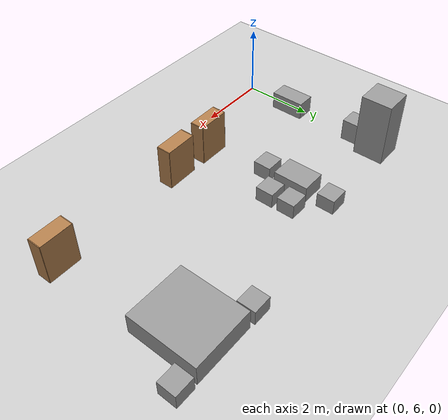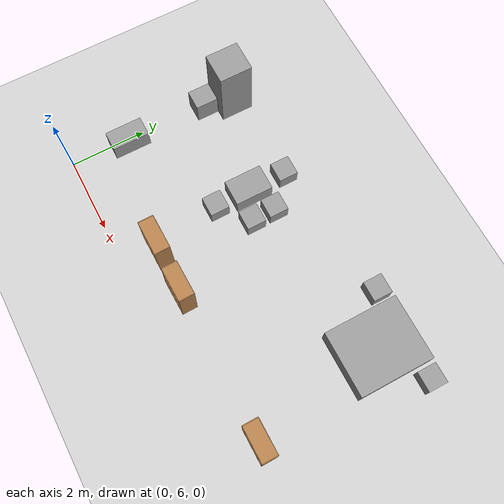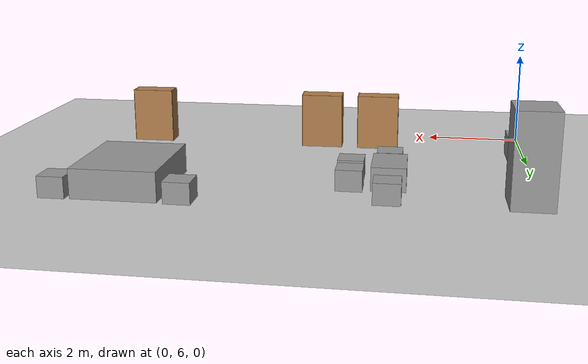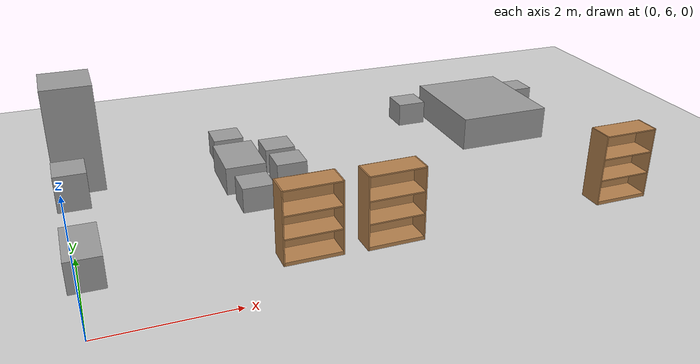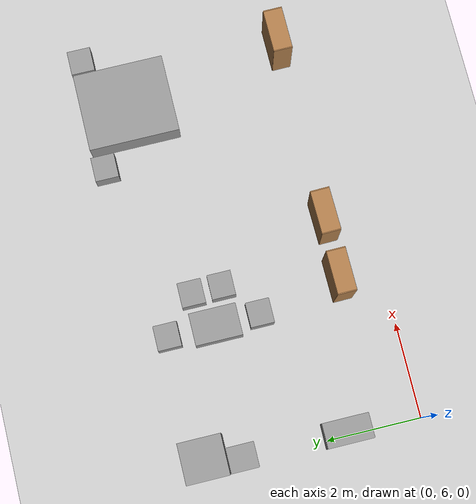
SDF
<sdf version="1.7">
 <world name="default">
  <model name="ground_plane">
   <static>1</static>
   <link name="link">
    <collision name="collision">
     <geometry><plane><normal>0 0 1</normal><size>100 100</size></plane></geometry>
     <surface>
      <contact><collide_bitmask>65535</collide_bitmask></contact>
      <friction><ode><mu>100</mu><mu2>50</mu2></ode></friction>
     </surface>
    </collision>
    <visual name="visual">
     <cast_shadows>0</cast_shadows>
     <geometry><plane><normal>0 0 1</normal><size>100 100</size></plane></geometry>
     <material>
      <script><uri>file://media/materials/scripts/gazebo.material</uri><name>Gazebo/Grey</name></script>
     </material>
    </visual>
   </link>
  </model>
  <model name="bookshelf_clone">
   <static>1</static>
   <link name="link">
    <inertial><mass>1</mass></inertial>
    <collision name="back">
     <pose>0 0.005 0.6 0 -0 0</pose>
     <geometry><box><size>0.9 0.01 1.2</size></box></geometry>
    </collision>
    <visual name="visual1">
     <pose>0 0.005 0.6 0 -0 0</pose>
     <geometry><box><size>0.9 0.01 1.2</size></box></geometry>
     <material>
      <script><uri>file://media/materials/scripts/gazebo.material</uri><name>Gazebo/Wood</name></script>
     </material>
    </visual>
    <collision name="left_side">
     <pose>0.45 -0.195 0.6 0 -0 0</pose>
     <geometry><box><size>0.02 0.4 1.2</size></box></geometry>
    </collision>
    <visual name="visual2">
     <pose>0.45 -0.195 0.6 0 -0 0</pose>
     <geometry><box><size>0.02 0.4 1.2</size></box></geometry>
     <material>
      <script><uri>file://media/materials/scripts/gazebo.material</uri><name>Gazebo/Wood</name></script>
     </material>
    </visual>
    <collision name="right_side">
     <pose>-0.45 -0.195 0.6 0 -0 0</pose>
     <geometry><box><size>0.02 0.4 1.2</size></box></geometry>
    </collision>
    <visual name="visual3">
     <pose>-0.45 -0.195 0.6 0 -0 0</pose>
     <geometry><box><size>0.02 0.4 1.2</size></box></geometry>
     <material>
      <script><uri>file://media/materials/scripts/gazebo.material</uri><name>Gazebo/Wood</name></script>
     </material>
    </visual>
    <collision name="bottom">
     <pose>0 -0.195 0.03 0 -0 0</pose>
     <geometry><box><size>0.88 0.4 0.06</size></box></geometry>
    </collision>
    <visual name="visual4">
     <pose>0 -0.195 0.03 0 -0 0</pose>
     <geometry><box><size>0.88 0.4 0.06</size></box></geometry>
     <material>
      <script><uri>file://media/materials/scripts/gazebo.material</uri><name>Gazebo/Wood</name></script>
     </material>
    </visual>
    <collision name="top">
     <pose>0 -0.195 1.19 0 -0 0</pose>
     <geometry><box><size>0.88 0.4 0.02</size></box></geometry>
    </collision>
    <visual name="visual5">
     <pose>0 -0.195 1.19 0 -0 0</pose>
     <geometry><box><size>0.88 0.4 0.02</size></box></geometry>
     <material>
      <script><uri>file://media/materials/scripts/gazebo.material</uri><name>Gazebo/Wood</name></script>
     </material>
    </visual>
    <collision name="low_shelf">
     <pose>0 -0.195 0.43 0 -0 0</pose>
     <geometry><box><size>0.88 0.4 0.02</size></box></geometry>
    </collision>
    <visual name="visual6">
     <pose>0 -0.195 0.43 0 -0 0</pose>
     <geometry><box><size>0.88 0.4 0.02</size></box></geometry>
     <material>
      <script><uri>file://media/materials/scripts/gazebo.material</uri><name>Gazebo/Wood</name></script>
     </material>
    </visual>
    <collision name="high_shelf">
     <pose>0 -0.195 0.8 0 -0 0</pose>
     <geometry><box><size>0.88 0.4 0.02</size></box></geometry>
    </collision>
    <visual name="visual7">
     <pose>0 -0.195 0.8 0 -0 0</pose>
     <geometry><box><size>0.88 0.4 0.02</size></box></geometry>
     <material>
      <script><uri>file://media/materials/scripts/gazebo.material</uri><name>Gazebo/Wood</name></script>
     </material>
    </visual>
   </link>
   <pose>3.20421 7.1574 0 0 -0 0.011143</pose>
  </model>
  <model name="bookshelf_clone_0">
   <static>1</static>
   <link name="link">
    <inertial><mass>1</mass></inertial>
    <collision name="back">
     <pose>0 0.005 0.6 0 -0 0</pose>
     <geometry><box><size>0.9 0.01 1.2</size></box></geometry>
    </collision>
    <visual name="visual1">
     <pose>0 0.005 0.6 0 -0 0</pose>
     <geometry><box><size>0.9 0.01 1.2</size></box></geometry>
     <material>
      <script><uri>file://media/materials/scripts/gazebo.material</uri><name>Gazebo/Wood</name></script>
     </material>
    </visual>
    <collision name="left_side">
     <pose>0.45 -0.195 0.6 0 -0 0</pose>
     <geometry><box><size>0.02 0.4 1.2</size></box></geometry>
    </collision>
    <visual name="visual2">
     <pose>0.45 -0.195 0.6 0 -0 0</pose>
     <geometry><box><size>0.02 0.4 1.2</size></box></geometry>
     <material>
      <script><uri>file://media/materials/scripts/gazebo.material</uri><name>Gazebo/Wood</name></script>
     </material>
    </visual>
    <collision name="right_side">
     <pose>-0.45 -0.195 0.6 0 -0 0</pose>
     <geometry><box><size>0.02 0.4 1.2</size></box></geometry>
    </collision>
    <visual name="visual3">
     <pose>-0.45 -0.195 0.6 0 -0 0</pose>
     <geometry><box><size>0.02 0.4 1.2</size></box></geometry>
     <material>
      <script><uri>file://media/materials/scripts/gazebo.material</uri><name>Gazebo/Wood</name></script>
     </material>
    </visual>
    <collision name="bottom">
     <pose>0 -0.195 0.03 0 -0 0</pose>
     <geometry><box><size>0.88 0.4 0.06</size></box></geometry>
    </collision>
    <visual name="visual4">
     <pose>0 -0.195 0.03 0 -0 0</pose>
     <geometry><box><size>0.88 0.4 0.06</size></box></geometry>
     <material>
      <script><uri>file://media/materials/scripts/gazebo.material</uri><name>Gazebo/Wood</name></script>
     </material>
    </visual>
    <collision name="top">
     <pose>0 -0.195 1.19 0 -0 0</pose>
     <geometry><box><size>0.88 0.4 0.02</size></box></geometry>
    </collision>
    <visual name="visual5">
     <pose>0 -0.195 1.19 0 -0 0</pose>
     <geometry><box><size>0.88 0.4 0.02</size></box></geometry>
     <material>
      <script><uri>file://media/materials/scripts/gazebo.material</uri><name>Gazebo/Wood</name></script>
     </material>
    </visual>
    <collision name="low_shelf">
     <pose>0 -0.195 0.43 0 -0 0</pose>
     <geometry><box><size>0.88 0.4 0.02</size></box></geometry>
    </collision>
    <visual name="visual6">
     <pose>0 -0.195 0.43 0 -0 0</pose>
     <geometry><box><size>0.88 0.4 0.02</size></box></geometry>
     <material>
      <script><uri>file://media/materials/scripts/gazebo.material</uri><name>Gazebo/Wood</name></script>
     </material>
    </visual>
    <collision name="high_shelf">
     <pose>0 -0.195 0.8 0 -0 0</pose>
     <geometry><box><size>0.88 0.4 0.02</size></box></geometry>
    </collision>
    <visual name="visual7">
     <pose>0 -0.195 0.8 0 -0 0</pose>
     <geometry><box><size>0.88 0.4 0.02</size></box></geometry>
     <material>
      <script><uri>file://media/materials/scripts/gazebo.material</uri><name>Gazebo/Wood</name></script>
     </material>
    </visual>
   </link>
   <pose>4.47359 7.13831 -0.006508 -0.017087 0.000419 0.020797</pose>
  </model>
  <model name="unit_box">
   <link name="link">
    <inertial>
     <mass>1</mass>
     <inertia>
      <ixx>0.166667</ixx>
      <ixy>0</ixy>
      <ixz>0</ixz>
      <iyy>0.166667</iyy>
      <iyz>0</iyz>
      <izz>0.166667</izz>
     </inertia>
    </inertial>
    <visual name="visual">
     <geometry><box><size>1.68417 1.93569 0.590711</size></box></geometry>
     <material>
      <script><name>Gazebo/Grey</name><uri>file://media/materials/scripts/gazebo.material</uri></script>
      <shader type="pixel"><normal_map>__default__</normal_map></shader>
      <ambient>0.933 0.933 0.925 1</ambient>
      <diffuse>0.7 0.7 0.7 1</diffuse>
      <specular>0.01 0.01 0.01 1</specular>
      <emissive>0 0 0 1</emissive>
     </material>
    </visual>
    <collision name="collision">
     <geometry><box><size>1.68417 1.93569 0.590711</size></box></geometry>
     <surface>
      <friction>
       <ode><mu>1</mu><mu2>1</mu2><fdir1>0 0 0</fdir1><slip1>0</slip1><slip2>0</slip2></ode>
       <torsional>
        <coefficient>1</coefficient>
        <patch_radius>0</patch_radius>
        <surface_radius>0</surface_radius>
        <use_patch_radius>1</use_patch_radius>
        <ode><slip>0</slip></ode>
       </torsional>
      </friction>
      <bounce><restitution_coefficient>0</restitution_coefficient><threshold>1e+06</threshold></bounce>
      <contact>
       <collide_without_contact>0</collide_without_contact>
       <collide_without_contact_bitmask>1</collide_without_contact_bitmask>
       <collide_bitmask>1</collide_bitmask>
       <ode>
        <soft_cfm>0</soft_cfm>
        <soft_erp>0.2</soft_erp>
        <kp>1e+13</kp>
        <kd>1</kd>
        <max_vel>0.01</max_vel>
        <min_depth>0</min_depth>
       </ode>
       <bullet>
        <split_impulse>1</split_impulse>
        <split_impulse_penetration_threshold>-0.01</split_impulse_penetration_threshold>
        <soft_cfm>0</soft_cfm>
        <soft_erp>0.2</soft_erp>
        <kp>1e+13</kp>
        <kd>1</kd>
       </bullet>
      </contact>
     </surface>
    </collision>
   </link>
   <static>0</static>
   <pose>7.86164 10.4166 0.295328 2.8e-05 -0 0.001435</pose>
  </model>
  <model name="unit_box_clone">
   <link name="link">
    <inertial>
     <mass>1</mass>
     <inertia>
      <ixx>0.166667</ixx>
      <ixy>0</ixy>
      <ixz>0</ixz>
      <iyy>0.166667</iyy>
      <iyz>0</iyz>
      <izz>0.166667</izz>
     </inertia>
    </inertial>
    <visual name="visual">
     <geometry><box><size>0.525272 0.502179 0.423961</size></box></geometry>
     <material>
      <script><name>Gazebo/Grey</name><uri>file://media/materials/scripts/gazebo.material</uri></script>
      <shader type="pixel"><normal_map>__default__</normal_map></shader>
      <ambient>0.933 0.933 0.925 1</ambient>
      <diffuse>0.7 0.7 0.7 1</diffuse>
      <specular>0.01 0.01 0.01 1</specular>
      <emissive>0 0 0 1</emissive>
     </material>
    </visual>
    <collision name="collision">
     <geometry><box><size>0.525272 0.502179 0.423961</size></box></geometry>
     <surface>
      <friction>
       <ode><mu>1</mu><mu2>1</mu2><fdir1>0 0 0</fdir1><slip1>0</slip1><slip2>0</slip2></ode>
       <torsional>
        <coefficient>1</coefficient>
        <patch_radius>0</patch_radius>
        <surface_radius>0</surface_radius>
        <use_patch_radius>1</use_patch_radius>
        <ode><slip>0</slip></ode>
       </torsional>
      </friction>
      <bounce><restitution_coefficient>0</restitution_coefficient><threshold>1e+06</threshold></bounce>
      <contact>
       <collide_without_contact>0</collide_without_contact>
       <collide_without_contact_bitmask>1</collide_without_contact_bitmask>
       <collide_bitmask>1</collide_bitmask>
       <ode>
        <soft_cfm>0</soft_cfm>
        <soft_erp>0.2</soft_erp>
        <kp>1e+13</kp>
        <kd>1</kd>
        <max_vel>0.01</max_vel>
        <min_depth>0</min_depth>
       </ode>
       <bullet>
        <split_impulse>1</split_impulse>
        <split_impulse_penetration_threshold>-0.01</split_impulse_penetration_threshold>
        <soft_cfm>0</soft_cfm>
        <soft_erp>0.2</soft_erp>
        <kp>1e+13</kp>
        <kd>1</kd>
       </bullet>
      </contact>
     </surface>
    </collision>
   </link>
   <static>0</static>
   <pose>6.63512 11.1676 0.21198 0 0 -6e-06</pose>
  </model>
  <model name="bookshelf_clone_0_clone">
   <static>1</static>
   <link name="link">
    <inertial><mass>1</mass></inertial>
    <collision name="back">
     <pose>0 0.005 0.6 0 -0 0</pose>
     <geometry><box><size>0.9 0.01 1.2</size></box></geometry>
    </collision>
    <visual name="visual1">
     <pose>0 0.005 0.6 0 -0 0</pose>
     <geometry><box><size>0.9 0.01 1.2</size></box></geometry>
     <material>
      <script><uri>file://media/materials/scripts/gazebo.material</uri><name>Gazebo/Wood</name></script>
     </material>
    </visual>
    <collision name="left_side">
     <pose>0.45 -0.195 0.6 0 -0 0</pose>
     <geometry><box><size>0.02 0.4 1.2</size></box></geometry>
    </collision>
    <visual name="visual2">
     <pose>0.45 -0.195 0.6 0 -0 0</pose>
     <geometry><box><size>0.02 0.4 1.2</size></box></geometry>
     <material>
      <script><uri>file://media/materials/scripts/gazebo.material</uri><name>Gazebo/Wood</name></script>
     </material>
    </visual>
    <collision name="right_side">
     <pose>-0.45 -0.195 0.6 0 -0 0</pose>
     <geometry><box><size>0.02 0.4 1.2</size></box></geometry>
    </collision>
    <visual name="visual3">
     <pose>-0.45 -0.195 0.6 0 -0 0</pose>
     <geometry><box><size>0.02 0.4 1.2</size></box></geometry>
     <material>
      <script><uri>file://media/materials/scripts/gazebo.material</uri><name>Gazebo/Wood</name></script>
     </material>
    </visual>
    <collision name="bottom">
     <pose>0 -0.195 0.03 0 -0 0</pose>
     <geometry><box><size>0.88 0.4 0.06</size></box></geometry>
    </collision>
    <visual name="visual4">
     <pose>0 -0.195 0.03 0 -0 0</pose>
     <geometry><box><size>0.88 0.4 0.06</size></box></geometry>
     <material>
      <script><uri>file://media/materials/scripts/gazebo.material</uri><name>Gazebo/Wood</name></script>
     </material>
    </visual>
    <collision name="top">
     <pose>0 -0.195 1.19 0 -0 0</pose>
     <geometry><box><size>0.88 0.4 0.02</size></box></geometry>
    </collision>
    <visual name="visual5">
     <pose>0 -0.195 1.19 0 -0 0</pose>
     <geometry><box><size>0.88 0.4 0.02</size></box></geometry>
     <material>
      <script><uri>file://media/materials/scripts/gazebo.material</uri><name>Gazebo/Wood</name></script>
     </material>
    </visual>
    <collision name="low_shelf">
     <pose>0 -0.195 0.43 0 -0 0</pose>
     <geometry><box><size>0.88 0.4 0.02</size></box></geometry>
    </collision>
    <visual name="visual6">
     <pose>0 -0.195 0.43 0 -0 0</pose>
     <geometry><box><size>0.88 0.4 0.02</size></box></geometry>
     <material>
      <script><uri>file://media/materials/scripts/gazebo.material</uri><name>Gazebo/Wood</name></script>
     </material>
    </visual>
    <collision name="high_shelf">
     <pose>0 -0.195 0.8 0 -0 0</pose>
     <geometry><box><size>0.88 0.4 0.02</size></box></geometry>
    </collision>
    <visual name="visual7">
     <pose>0 -0.195 0.8 0 -0 0</pose>
     <geometry><box><size>0.88 0.4 0.02</size></box></geometry>
     <material>
      <script><uri>file://media/materials/scripts/gazebo.material</uri><name>Gazebo/Wood</name></script>
     </material>
    </visual>
   </link>
   <pose>8.46497 7.1577 0 0 -0 0.007205</pose>
  </model>
  <model name="unit_box_clone_clone">
   <link name="link">
    <inertial>
     <mass>1</mass>
     <inertia>
      <ixx>0.166667</ixx>
      <ixy>0</ixy>
      <ixz>0</ixz>
      <iyy>0.166667</iyy>
      <iyz>0</iyz>
      <izz>0.166667</izz>
     </inertia>
    </inertial>
    <visual name="visual">
     <geometry><box><size>0.808451 0.858287 1.84502</size></box></geometry>
     <material>
      <script><name>Gazebo/Grey</name><uri>file://media/materials/scripts/gazebo.material</uri></script>
      <shader type="pixel"><normal_map>__default__</normal_map></shader>
      <ambient>0.933 0.933 0.925 1</ambient>
      <diffuse>0.7 0.7 0.7 1</diffuse>
      <specular>0.01 0.01 0.01 1</specular>
      <emissive>0 0 0 1</emissive>
     </material>
    </visual>
    <collision name="collision">
     <geometry><box><size>0.808451 0.858287 1.84502</size></box></geometry>
     <surface>
      <friction>
       <ode><mu>1</mu><mu2>1</mu2><fdir1>0 0 0</fdir1><slip1>0</slip1><slip2>0</slip2></ode>
       <torsional>
        <coefficient>1</coefficient>
        <patch_radius>0</patch_radius>
        <surface_radius>0</surface_radius>
        <use_patch_radius>1</use_patch_radius>
        <ode><slip>0</slip></ode>
       </torsional>
      </friction>
      <bounce><restitution_coefficient>0</restitution_coefficient><threshold>1e+06</threshold></bounce>
      <contact>
       <collide_without_contact>0</collide_without_contact>
       <collide_without_contact_bitmask>1</collide_without_contact_bitmask>
       <collide_bitmask>1</collide_bitmask>
       <ode>
        <soft_cfm>0</soft_cfm>
        <soft_erp>0.2</soft_erp>
        <kp>1e+13</kp>
        <kd>1</kd>
        <max_vel>0.01</max_vel>
        <min_depth>0</min_depth>
       </ode>
       <bullet>
        <split_impulse>1</split_impulse>
        <split_impulse_penetration_threshold>-0.01</split_impulse_penetration_threshold>
        <soft_cfm>0</soft_cfm>
        <soft_erp>0.2</soft_erp>
        <kp>1e+13</kp>
        <kd>1</kd>
       </bullet>
      </contact>
     </surface>
    </collision>
   </link>
   <static>0</static>
   <pose>0.247629 10.497 0.922507 -3e-06 3e-06 -0.000221</pose>
  </model>
  <model name="unit_box_clone_clone_0">
   <link name="link">
    <inertial>
     <mass>1</mass>
     <inertia>
      <ixx>0.166667</ixx>
      <ixy>0</ixy>
      <ixz>0</ixz>
      <iyy>0.166667</iyy>
      <iyz>0</iyz>
      <izz>0.166667</izz>
     </inertia>
    </inertial>
    <visual name="visual">
     <geometry><box><size>0.525272 0.583453 0.630859</size></box></geometry>
     <material>
      <script><name>Gazebo/Grey</name><uri>file://media/materials/scripts/gazebo.material</uri></script>
      <shader type="pixel"><normal_map>__default__</normal_map></shader>
      <ambient>0.933 0.933 0.925 1</ambient>
      <diffuse>0.7 0.7 0.7 1</diffuse>
      <specular>0.01 0.01 0.01 1</specular>
      <emissive>0 0 0 1</emissive>
     </material>
    </visual>
    <collision name="collision">
     <geometry><box><size>0.525272 0.583453 0.630859</size></box></geometry>
     <surface>
      <friction>
       <ode><mu>1</mu><mu2>1</mu2><fdir1>0 0 0</fdir1><slip1>0</slip1><slip2>0</slip2></ode>
       <torsional>
        <coefficient>1</coefficient>
        <patch_radius>0</patch_radius>
        <surface_radius>0</surface_radius>
        <use_patch_radius>1</use_patch_radius>
        <ode><slip>0</slip></ode>
       </torsional>
      </friction>
      <bounce><restitution_coefficient>0</restitution_coefficient><threshold>1e+06</threshold></bounce>
      <contact>
       <collide_without_contact>0</collide_without_contact>
       <collide_without_contact_bitmask>1</collide_without_contact_bitmask>
       <collide_bitmask>1</collide_bitmask>
       <ode>
        <soft_cfm>0</soft_cfm>
        <soft_erp>0.2</soft_erp>
        <kp>1e+13</kp>
        <kd>1</kd>
        <max_vel>0.01</max_vel>
        <min_depth>0</min_depth>
       </ode>
       <bullet>
        <split_impulse>1</split_impulse>
        <split_impulse_penetration_threshold>-0.01</split_impulse_penetration_threshold>
        <soft_cfm>0</soft_cfm>
        <soft_erp>0.2</soft_erp>
        <kp>1e+13</kp>
        <kd>1</kd>
       </bullet>
      </contact>
     </surface>
    </collision>
   </link>
   <static>0</static>
   <pose>0.097615 9.77175 0.31543 0 0 -6e-06</pose>
  </model>
  <model name="unit_box_clone_clone_1">
   <link name="link">
    <inertial>
     <mass>1</mass>
     <inertia>
      <ixx>0.166667</ixx>
      <ixy>0</ixy>
      <ixz>0</ixz>
      <iyy>0.166667</iyy>
      <iyz>0</iyz>
      <izz>0.166667</izz>
     </inertia>
    </inertial>
    <visual name="visual">
     <geometry><box><size>0.525272 0.97954 0.509969</size></box></geometry>
     <material>
      <script><name>Gazebo/Grey</name><uri>file://media/materials/scripts/gazebo.material</uri></script>
      <shader type="pixel"><normal_map>__default__</normal_map></shader>
      <ambient>0.933 0.933 0.925 1</ambient>
      <diffuse>0.7 0.7 0.7 1</diffuse>
      <specular>0.01 0.01 0.01 1</specular>
      <emissive>0 0 0 1</emissive>
     </material>
    </visual>
    <collision name="collision">
     <geometry><box><size>0.525272 0.97954 0.509969</size></box></geometry>
     <surface>
      <friction>
       <ode><mu>1</mu><mu2>1</mu2><fdir1>0 0 0</fdir1><slip1>0</slip1><slip2>0</slip2></ode>
       <torsional>
        <coefficient>1</coefficient>
        <patch_radius>0</patch_radius>
        <surface_radius>0</surface_radius>
        <use_patch_radius>1</use_patch_radius>
        <ode><slip>0</slip></ode>
       </torsional>
      </friction>
      <bounce><restitution_coefficient>0</restitution_coefficient><threshold>1e+06</threshold></bounce>
      <contact>
       <collide_without_contact>0</collide_without_contact>
       <collide_without_contact_bitmask>1</collide_without_contact_bitmask>
       <collide_bitmask>1</collide_bitmask>
       <ode>
        <soft_cfm>0</soft_cfm>
        <soft_erp>0.2</soft_erp>
        <kp>1e+13</kp>
        <kd>1</kd>
        <max_vel>0.01</max_vel>
        <min_depth>0</min_depth>
       </ode>
       <bullet>
        <split_impulse>1</split_impulse>
        <split_impulse_penetration_threshold>-0.01</split_impulse_penetration_threshold>
        <soft_cfm>0</soft_cfm>
        <soft_erp>0.2</soft_erp>
        <kp>1e+13</kp>
        <kd>1</kd>
       </bullet>
      </contact>
     </surface>
    </collision>
   </link>
   <static>0</static>
   <pose>0.106653 7.572 0.254985 -0 -0 -4e-06</pose>
  </model>
  <model name="unit_box_clone_clone_1_clone">
   <link name="link">
    <inertial>
     <mass>1</mass>
     <inertia>
      <ixx>0.166667</ixx>
      <ixy>0</ixy>
      <ixz>0</ixz>
      <iyy>0.166667</iyy>
      <iyz>0</iyz>
      <izz>0.166667</izz>
     </inertia>
    </inertial>
    <visual name="visual">
     <geometry><box><size>0.682472 0.993503 0.47723</size></box></geometry>
     <material>
      <script><name>Gazebo/Grey</name><uri>file://media/materials/scripts/gazebo.material</uri></script>
      <shader type="pixel"><normal_map>__default__</normal_map></shader>
      <ambient>0.933 0.933 0.925 1</ambient>
      <diffuse>0.7 0.7 0.7 1</diffuse>
      <specular>0.01 0.01 0.01 1</specular>
      <emissive>0 0 0 1</emissive>
     </material>
    </visual>
    <collision name="collision">
     <geometry><box><size>0.682472 0.993503 0.47723</size></box></geometry>
     <surface>
      <friction>
       <ode><mu>1</mu><mu2>1</mu2><fdir1>0 0 0</fdir1><slip1>0</slip1><slip2>0</slip2></ode>
       <torsional>
        <coefficient>1</coefficient>
        <patch_radius>0</patch_radius>
        <surface_radius>0</surface_radius>
        <use_patch_radius>1</use_patch_radius>
        <ode><slip>0</slip></ode>
       </torsional>
      </friction>
      <bounce><restitution_coefficient>0</restitution_coefficient><threshold>1e+06</threshold></bounce>
      <contact>
       <collide_without_contact>0</collide_without_contact>
       <collide_without_contact_bitmask>1</collide_without_contact_bitmask>
       <collide_bitmask>1</collide_bitmask>
       <ode>
        <soft_cfm>0</soft_cfm>
        <soft_erp>0.2</soft_erp>
        <kp>1e+13</kp>
        <kd>1</kd>
        <max_vel>0.01</max_vel>
        <min_depth>0</min_depth>
       </ode>
       <bullet>
        <split_impulse>1</split_impulse>
        <split_impulse_penetration_threshold>-0.01</split_impulse_penetration_threshold>
        <soft_cfm>0</soft_cfm>
        <soft_erp>0.2</soft_erp>
        <kp>1e+13</kp>
        <kd>1</kd>
       </bullet>
      </contact>
     </surface>
    </collision>
   </link>
   <static>0</static>
   <pose>2.83779 9.67014 0.238615 0 -0 1.8e-05</pose>
  </model>
  <model name="unit_box_clone_clone_5">
   <link name="link">
    <inertial>
     <mass>1</mass>
     <inertia>
      <ixx>0.166667</ixx>
      <ixy>0</ixy>
      <ixz>0</ixz>
      <iyy>0.166667</iyy>
      <iyz>0</iyz>
      <izz>0.166667</izz>
     </inertia>
    </inertial>
    <visual name="visual">
     <geometry><box><size>0.525272 0.502179 0.423961</size></box></geometry>
     <material>
      <script><name>Gazebo/Grey</name><uri>file://media/materials/scripts/gazebo.material</uri></script>
      <shader type="pixel"><normal_map>__default__</normal_map></shader>
      <ambient>0.933 0.933 0.925 1</ambient>
      <diffuse>0.7 0.7 0.7 1</diffuse>
      <specular>0.01 0.01 0.01 1</specular>
      <emissive>0 0 0 1</emissive>
     </material>
    </visual>
    <collision name="collision">
     <geometry><box><size>0.525272 0.502179 0.423961</size></box></geometry>
     <surface>
      <friction>
       <ode><mu>1</mu><mu2>1</mu2><fdir1>0 0 0</fdir1><slip1>0</slip1><slip2>0</slip2></ode>
       <torsional>
        <coefficient>1</coefficient>
        <patch_radius>0</patch_radius>
        <surface_radius>0</surface_radius>
        <use_patch_radius>1</use_patch_radius>
        <ode><slip>0</slip></ode>
       </torsional>
      </friction>
      <bounce><restitution_coefficient>0</restitution_coefficient><threshold>1e+06</threshold></bounce>
      <contact>
       <collide_without_contact>0</collide_without_contact>
       <collide_without_contact_bitmask>1</collide_without_contact_bitmask>
       <collide_bitmask>1</collide_bitmask>
       <ode>
        <soft_cfm>0</soft_cfm>
        <soft_erp>0.2</soft_erp>
        <kp>1e+13</kp>
        <kd>1</kd>
        <max_vel>0.01</max_vel>
        <min_depth>0</min_depth>
       </ode>
       <bullet>
        <split_impulse>1</split_impulse>
        <split_impulse_penetration_threshold>-0.01</split_impulse_penetration_threshold>
        <soft_cfm>0</soft_cfm>
        <soft_erp>0.2</soft_erp>
        <kp>1e+13</kp>
        <kd>1</kd>
       </bullet>
      </contact>
     </surface>
    </collision>
   </link>
   <static>0</static>
   <pose>2.84093 10.6917 0.21198 0 0 -6e-06</pose>
  </model>
  <model name="unit_box_clone_clone_9">
   <link name="link">
    <inertial>
     <mass>1</mass>
     <inertia>
      <ixx>0.166667</ixx>
      <ixy>0</ixy>
      <ixz>0</ixz>
      <iyy>0.166667</iyy>
      <iyz>0</iyz>
      <izz>0.166667</izz>
     </inertia>
    </inertial>
    <visual name="visual">
     <geometry><box><size>0.525272 0.502179 0.423961</size></box></geometry>
     <material>
      <script><name>Gazebo/Grey</name><uri>file://media/materials/scripts/gazebo.material</uri></script>
      <shader type="pixel"><normal_map>__default__</normal_map></shader>
      <ambient>0.933 0.933 0.925 1</ambient>
      <diffuse>0.7 0.7 0.7 1</diffuse>
      <specular>0.01 0.01 0.01 1</specular>
      <emissive>0 0 0 1</emissive>
     </material>
    </visual>
    <collision name="collision">
     <geometry><box><size>0.525272 0.502179 0.423961</size></box></geometry>
     <surface>
      <friction>
       <ode><mu>1</mu><mu2>1</mu2><fdir1>0 0 0</fdir1><slip1>0</slip1><slip2>0</slip2></ode>
       <torsional>
        <coefficient>1</coefficient>
        <patch_radius>0</patch_radius>
        <surface_radius>0</surface_radius>
        <use_patch_radius>1</use_patch_radius>
        <ode><slip>0</slip></ode>
       </torsional>
      </friction>
      <bounce><restitution_coefficient>0</restitution_coefficient><threshold>1e+06</threshold></bounce>
      <contact>
       <collide_without_contact>0</collide_without_contact>
       <collide_without_contact_bitmask>1</collide_without_contact_bitmask>
       <collide_bitmask>1</collide_bitmask>
       <ode>
        <soft_cfm>0</soft_cfm>
        <soft_erp>0.2</soft_erp>
        <kp>1e+13</kp>
        <kd>1</kd>
        <max_vel>0.01</max_vel>
        <min_depth>0</min_depth>
       </ode>
       <bullet>
        <split_impulse>1</split_impulse>
        <split_impulse_penetration_threshold>-0.01</split_impulse_penetration_threshold>
        <soft_cfm>0</soft_cfm>
        <soft_erp>0.2</soft_erp>
        <kp>1e+13</kp>
        <kd>1</kd>
       </bullet>
      </contact>
     </surface>
    </collision>
   </link>
   <static>0</static>
   <pose>3.5915 10.0055 0.21198 0 0 -6e-06</pose>
  </model>
  <model name="unit_box_clone_clone_10">
   <link name="link">
    <inertial>
     <mass>1</mass>
     <inertia>
      <ixx>0.166667</ixx>
      <ixy>0</ixy>
      <ixz>0</ixz>
      <iyy>0.166667</iyy>
      <iyz>0</iyz>
      <izz>0.166667</izz>
     </inertia>
    </inertial>
    <visual name="visual">
     <geometry><box><size>0.525272 0.502179 0.423961</size></box></geometry>
     <material>
      <script><name>Gazebo/Grey</name><uri>file://media/materials/scripts/gazebo.material</uri></script>
      <shader type="pixel"><normal_map>__default__</normal_map></shader>
      <ambient>0.933 0.933 0.925 1</ambient>
      <diffuse>0.7 0.7 0.7 1</diffuse>
      <specular>0.01 0.01 0.01 1</specular>
      <emissive>0 0 0 1</emissive>
     </material>
    </visual>
    <collision name="collision">
     <geometry><box><size>0.525272 0.502179 0.423961</size></box></geometry>
     <surface>
      <friction>
       <ode><mu>1</mu><mu2>1</mu2><fdir1>0 0 0</fdir1><slip1>0</slip1><slip2>0</slip2></ode>
       <torsional>
        <coefficient>1</coefficient>
        <patch_radius>0</patch_radius>
        <surface_radius>0</surface_radius>
        <use_patch_radius>1</use_patch_radius>
        <ode><slip>0</slip></ode>
       </torsional>
      </friction>
      <bounce><restitution_coefficient>0</restitution_coefficient><threshold>1e+06</threshold></bounce>
      <contact>
       <collide_without_contact>0</collide_without_contact>
       <collide_without_contact_bitmask>1</collide_without_contact_bitmask>
       <collide_bitmask>1</collide_bitmask>
       <ode>
        <soft_cfm>0</soft_cfm>
        <soft_erp>0.2</soft_erp>
        <kp>1e+13</kp>
        <kd>1</kd>
        <max_vel>0.01</max_vel>
        <min_depth>0</min_depth>
       </ode>
       <bullet>
        <split_impulse>1</split_impulse>
        <split_impulse_penetration_threshold>-0.01</split_impulse_penetration_threshold>
        <soft_cfm>0</soft_cfm>
        <soft_erp>0.2</soft_erp>
        <kp>1e+13</kp>
        <kd>1</kd>
       </bullet>
      </contact>
     </surface>
    </collision>
   </link>
   <static>0</static>
   <pose>3.61034 9.36526 0.21198 0 0 -6e-06</pose>
  </model>
  <model name="unit_box_clone_clone_11">
   <link name="link">
    <inertial>
     <mass>1</mass>
     <inertia>
      <ixx>0.166667</ixx>
      <ixy>0</ixy>
      <ixz>0</ixz>
      <iyy>0.166667</iyy>
      <iyz>0</iyz>
      <izz>0.166667</izz>
     </inertia>
    </inertial>
    <visual name="visual">
     <geometry><box><size>0.525272 0.502179 0.423961</size></box></geometry>
     <material>
      <script><name>Gazebo/Grey</name><uri>file://media/materials/scripts/gazebo.material</uri></script>
      <shader type="pixel"><normal_map>__default__</normal_map></shader>
      <ambient>0.933 0.933 0.925 1</ambient>
      <diffuse>0.7 0.7 0.7 1</diffuse>
      <specular>0.01 0.01 0.01 1</specular>
      <emissive>0 0 0 1</emissive>
     </material>
    </visual>
    <collision name="collision">
     <geometry><box><size>0.525272 0.502179 0.423961</size></box></geometry>
     <surface>
      <friction>
       <ode><mu>1</mu><mu2>1</mu2><fdir1>0 0 0</fdir1><slip1>0</slip1><slip2>0</slip2></ode>
       <torsional>
        <coefficient>1</coefficient>
        <patch_radius>0</patch_radius>
        <surface_radius>0</surface_radius>
        <use_patch_radius>1</use_patch_radius>
        <ode><slip>0</slip></ode>
       </torsional>
      </friction>
      <bounce><restitution_coefficient>0</restitution_coefficient><threshold>1e+06</threshold></bounce>
      <contact>
       <collide_without_contact>0</collide_without_contact>
       <collide_without_contact_bitmask>1</collide_without_contact_bitmask>
       <collide_bitmask>1</collide_bitmask>
       <ode>
        <soft_cfm>0</soft_cfm>
        <soft_erp>0.2</soft_erp>
        <kp>1e+13</kp>
        <kd>1</kd>
        <max_vel>0.01</max_vel>
        <min_depth>0</min_depth>
       </ode>
       <bullet>
        <split_impulse>1</split_impulse>
        <split_impulse_penetration_threshold>-0.01</split_impulse_penetration_threshold>
        <soft_cfm>0</soft_cfm>
        <soft_erp>0.2</soft_erp>
        <kp>1e+13</kp>
        <kd>1</kd>
       </bullet>
      </contact>
     </surface>
    </collision>
   </link>
   <static>0</static>
   <pose>2.86041 8.7265 0.21198 0 0 -6e-06</pose>
  </model>
  <model name="unit_box_clone_clone_12">
   <link name="link">
    <inertial>
     <mass>1</mass>
     <inertia>
      <ixx>0.166667</ixx>
      <ixy>0</ixy>
      <ixz>0</ixz>
      <iyy>0.166667</iyy>
      <iyz>0</iyz>
      <izz>0.166667</izz>
     </inertia>
    </inertial>
    <visual name="visual">
     <geometry><box><size>0.525272 0.502179 0.423961</size></box></geometry>
     <material>
      <script><name>Gazebo/Grey</name><uri>file://media/materials/scripts/gazebo.material</uri></script>
      <shader type="pixel"><normal_map>__default__</normal_map></shader>
      <ambient>0.933 0.933 0.925 1</ambient>
      <diffuse>0.7 0.7 0.7 1</diffuse>
      <specular>0.01 0.01 0.01 1</specular>
      <emissive>0 0 0 1</emissive>
     </material>
    </visual>
    <collision name="collision">
     <geometry><box><size>0.525272 0.502179 0.423961</size></box></geometry>
     <surface>
      <friction>
       <ode><mu>1</mu><mu2>1</mu2><fdir1>0 0 0</fdir1><slip1>0</slip1><slip2>0</slip2></ode>
       <torsional>
        <coefficient>1</coefficient>
        <patch_radius>0</patch_radius>
        <surface_radius>0</surface_radius>
        <use_patch_radius>1</use_patch_radius>
        <ode><slip>0</slip></ode>
       </torsional>
      </friction>
      <bounce><restitution_coefficient>0</restitution_coefficient><threshold>1e+06</threshold></bounce>
      <contact>
       <collide_without_contact>0</collide_without_contact>
       <collide_without_contact_bitmask>1</collide_without_contact_bitmask>
       <collide_bitmask>1</collide_bitmask>
       <ode>
        <soft_cfm>0</soft_cfm>
        <soft_erp>0.2</soft_erp>
        <kp>1e+13</kp>
        <kd>1</kd>
        <max_vel>0.01</max_vel>
        <min_depth>0</min_depth>
       </ode>
       <bullet>
        <split_impulse>1</split_impulse>
        <split_impulse_penetration_threshold>-0.01</split_impulse_penetration_threshold>
        <soft_cfm>0</soft_cfm>
        <soft_erp>0.2</soft_erp>
        <kp>1e+13</kp>
        <kd>1</kd>
       </bullet>
      </contact>
     </surface>
    </collision>
   </link>
   <static>0</static>
   <pose>9.05656 11.1601 0.21198 0 0 -6e-06</pose>
  </model>
 </world>
</sdf>
